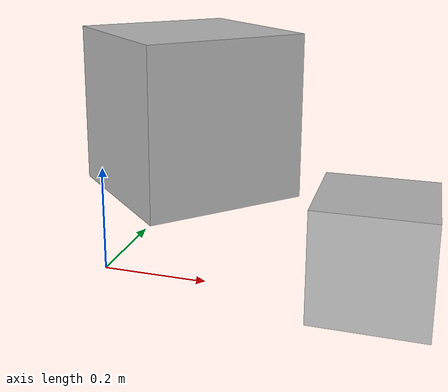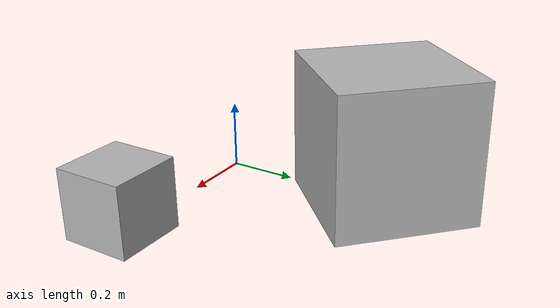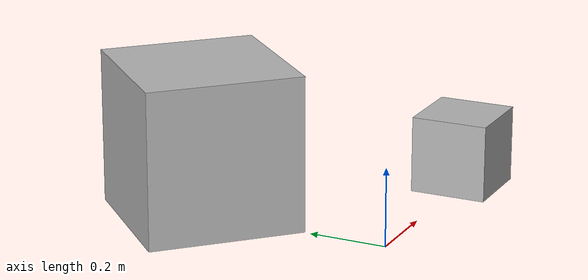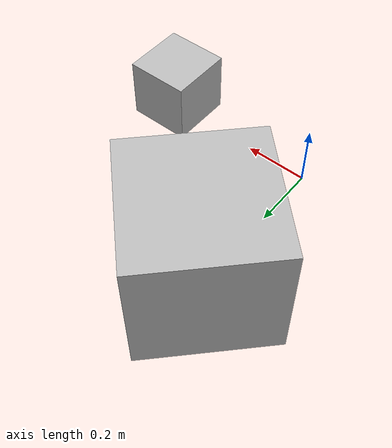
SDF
<?xml version="1.0"?>
<sdf version="1.6">
  <model name="box_0">
    <pose>0 0 0.1 0 0 0</pose>
    <link name="link_0">
      <pose>0.5 0 0 0 0 0</pose>
      <visual name="visual_0">
	<geometry>
	  <box>
	    <size>.2 .2 .2</size>
	  </box>
	</geometry>
      </visual>
    </link>

    <model name="box_1">
      <pose>0 0 0.1 0 0 0</pose>
      <link name="link_1">
	<pose>0 0.5 0 0 0 0.8</pose>
        <visual name="visual_1">
	  <geometry>
	    <box>
	      <size>.4 .4 .4</size>
  	    </box>
	  </geometry>
        </visual>
      </link>
    </model>
  </model>
</sdf>
